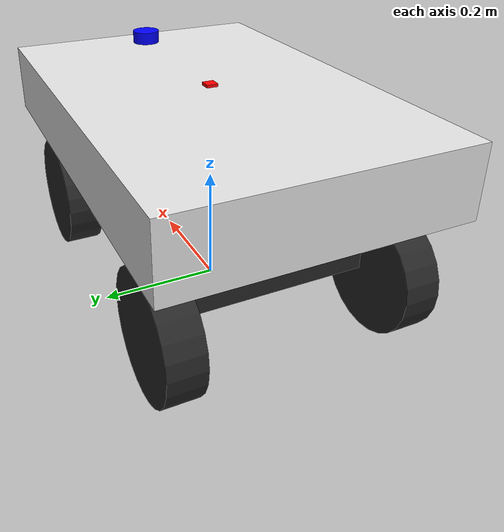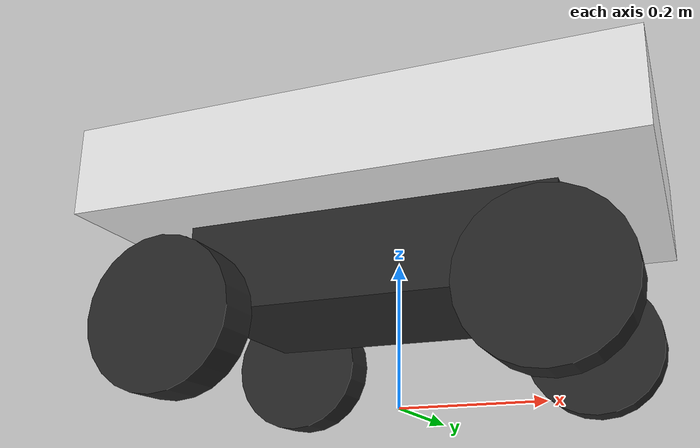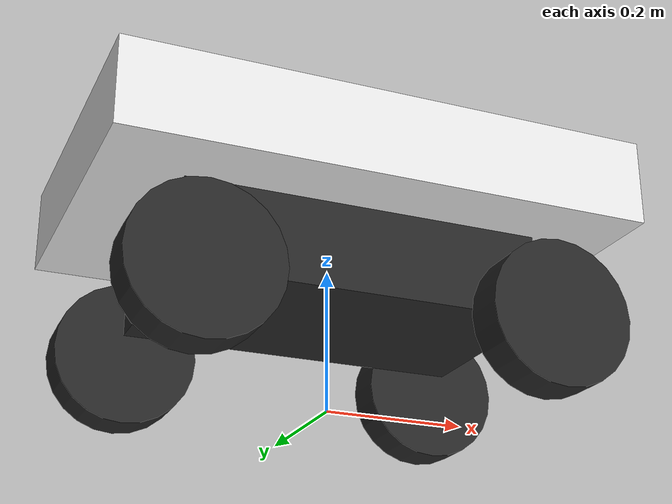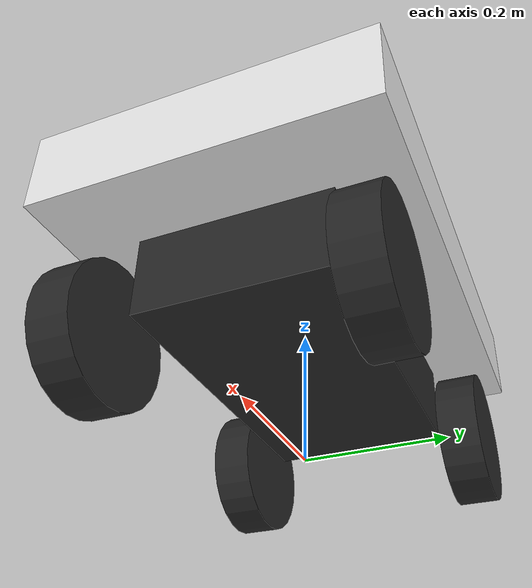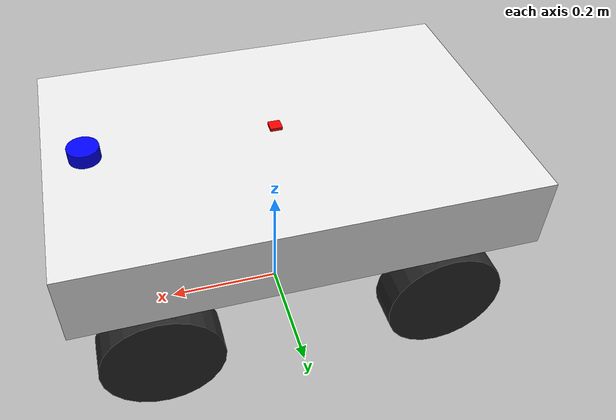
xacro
<?xml version="1.0" ?>
<robot name="four_wheel_independent_drive_and_steering_vehicle" xmlns:xacro="http://www.ros.org/wiki/xacro">

  <material name="black">
    <color rgba="0.15 0.15 0.15 1.0"/>
  </material>
  <material name="white">
    <color rgba="0.9 0.9 0.9 1.0"/>
  </material>
  <material name="red">
    <color rgba="1.0 0.0 0.0 1.0"/>
  </material>
  <material name="blue">
    <color rgba="0.0 0.0 1.0 1.0"/>
  </material>

  <link name="base_footprint"/>

  <link name="base_link"/>
  <joint name="footprint_to_base" type="fixed">
    <origin rpy="0 0 0" xyz="0 0 0"/>
    <parent link="base_footprint"/>
    <child link="base_link"/>
  </joint>

  <link name="body">
    <visual>
      <origin xyz="0 0 0.06" rpy="0 0 0"/>
      <geometry><box size="0.73 0.48 0.12"/></geometry>
      <material name="white"/>
    </visual>
    <visual>
      <origin xyz="0 0 -0.06" rpy="0 0 0"/>
      <geometry><box size="0.50 0.28 0.12"/></geometry>
      <material name="black"/>
    </visual>
    <collision>
      <origin xyz="0 0 0" rpy="0 0 0"/>
      <geometry><box size="0.73 0.28 0.24"/></geometry>
    </collision>
    <inertial>
      <mass value="30.0"/>
      <inertia ixx="0.72" ixy="0" ixz="0" iyy="1.47" iyz="0" izz="1.90"/>
    </inertial>
  </link>

  <joint name="base_joint" type="fixed">
    <origin rpy="0 0 0" xyz="0 0 0.24"/>
    <parent link="base_link"/>
    <child link="body"/>
  </joint>

  <gazebo reference="body">
    <mu1>0.5</mu1>
    <mu2>0.5</mu2>
    <kp>10000000.0</kp>
    <kd>1.0</kd>
    <minDepth>0.001</minDepth>
    <material>Gazebo/White</material>
  </gazebo>

  <link name="laser_link">
    <visual>
      <geometry><cylinder length="0.025" radius="0.025"/></geometry>
      <material name="blue"/>
    </visual>
    <collision>
      <geometry><cylinder length="0.025" radius="0.025"/></geometry>
    </collision>
    <inertial>
      <mass value="0.1"/>
      <inertia ixx="0.0001" ixy="0" ixz="0" iyy="0.0001" iyz="0" izz="0.0001"/>
    </inertial>
  </link>
  <joint name="laser_joint" type="fixed">
    <origin rpy="0 0 0" xyz="0.3 0 0.13"/> <parent link="body"/>
    <child link="laser_link"/>
  </joint>

  <link name="imu_link">
    <visual>
      <geometry><box size="0.02 0.02 0.01"/></geometry>
      <material name="red"/>
    </visual>
    <inertial>
      <mass value="0.01"/>
      <inertia ixx="0.00001" ixy="0" ixz="0" iyy="0.00001" iyz="0" izz="0.00001"/>
    </inertial>
  </link>
  <joint name="imu_joint" type="fixed">
    <origin rpy="0 0 0" xyz="0 0 0.12"/>
    <parent link="body"/>
    <child link="imu_link"/>
  </joint>

  <xacro:macro name="wheel_module" params="prefix x_offset y_offset">

    <link name="${prefix}_wheel_steer">
      <visual>
        <origin rpy="0 0 0" xyz="0 0 -0.05"/>
        <geometry><box size="0.06 0.04 0.10"/></geometry>
        <material name="black"/>
      </visual>
      <inertial>
        <mass value="1.0"/>
        <inertia ixx="0.005" ixy="0" ixz="0" iyy="0.005" iyz="0" izz="0.005"/>
      </inertial>
    </link>
    <joint name="${prefix}_wheel_steer_joint" type="revolute">
      <origin rpy="0 0 0" xyz="${x_offset} ${y_offset} -0.04"/>
      <parent link="body"/>
      <child link="${prefix}_wheel_steer"/>
      <axis xyz="0 0 1"/>
      <limit effort="1000" lower="-3.1416" upper="3.1416" velocity="50"/>
      <dynamics damping="10.0" friction="50.0"/>
    </joint>

    <link name="${prefix}_wheel_rotor">
      <visual>
        <geometry>
          <cylinder length="0.06" radius="0.1015"/>
        </geometry>
        <material name="black"/>
      </visual>
      <collision>
        <geometry>
          <sphere radius="0.1015"/>
        </geometry>
      </collision>
      <inertial>
        <mass value="4.0"/>
        <inertia ixx="0.012" ixy="0" ixz="0" iyy="0.012" iyz="0" izz="0.02"/>
      </inertial>
    </link>

    <joint name="${prefix}_wheel_rotor_joint" type="continuous">
      <origin rpy="-1.570796 0 0" xyz="0 0 -0.0985"/>
      <parent link="${prefix}_wheel_steer"/>
      <child link="${prefix}_wheel_rotor"/>
      <axis xyz="0 0 1"/>
      <limit effort="10000" velocity="23.5"/>
      <dynamics damping="1.0" friction="1.0"/>
    </joint>

    <gazebo reference="${prefix}_wheel_rotor">
      <mu1>0.8</mu1>
      <mu2>0.8</mu2>
      <kp>10000000.0</kp>
      <kd>1.0</kd>
      <minDepth>0.0001</minDepth>
      <material>Gazebo/DarkGrey</material>
    </gazebo>
  </xacro:macro>

  <xacro:wheel_module prefix="front_left" x_offset="0.24" y_offset="0.19" />
  <xacro:wheel_module prefix="front_right" x_offset="0.24" y_offset="-0.19" />
  <xacro:wheel_module prefix="rear_left" x_offset="-0.24" y_offset="0.19" />
  <xacro:wheel_module prefix="rear_right" x_offset="-0.24" y_offset="-0.19" />

  <gazebo reference="laser_link">
    <sensor name="laser" type="ray">
      <pose>0 0 0 0 0 0</pose>
      <visualize>false</visualize>
      <update_rate>10</update_rate>
      <ray>
        <scan>
          <horizontal>
            <samples>800</samples>
            <resolution>1</resolution>
            <min_angle>-3.14159</min_angle>
            <max_angle>3.14159</max_angle>
          </horizontal>
        </scan>
        <range>
          <min>0.05</min>
          <max>30.0</max>
          <resolution>0.01</resolution>
        </range>
      </ray>
      <plugin filename="libgazebo_ros_ray_sensor.so" name="gazebo_ros_lidar_controller">
        <ros>
          <remapping>~/out:=scan</remapping>
        </ros>
        <output_type>sensor_msgs/LaserScan</output_type>
        <frame_name>laser_link</frame_name>
      </plugin>
    </sensor>
  </gazebo>

  <gazebo reference="imu_link">
    <sensor name="imu_sensor" type="imu">
      <always_on>true</always_on>
      <update_rate>100</update_rate>
      <visualize>true</visualize>
      <plugin filename="libgazebo_ros_imu_sensor.so" name="gazebo_ros_imu_controller">
        <ros>
          <remapping>~/out:=imu</remapping>
        </ros>
        <frame_name>imu_link</frame_name>
      </plugin>
    </sensor>
  </gazebo>

  <gazebo>
    <plugin filename="libgazebo_ros_p3d.so" name="ground_truth_odometry">
      <always_on>true</always_on>
      <update_rate>30.0</update_rate>
      <ros>
        <remapping>odom:=/groundtruth_odom</remapping>
      </ros>
      <body_name>base_footprint</body_name>
      <frame_name>odom</frame_name>
      <publish_tf>0</publish_tf>
    </plugin>
  </gazebo>

  <xacro:macro name="control_interface" params="prefix">
    <joint name="${prefix}_wheel_steer_joint">
      <command_interface name="position"/>
      <state_interface name="position"/>
      <state_interface name="velocity"/>
    </joint>
    <joint name="${prefix}_wheel_rotor_joint">
      <command_interface name="velocity"/>
      <state_interface name="position"/>
      <state_interface name="velocity"/>
    </joint>
  </xacro:macro>

  <ros2_control name="GazeboSystem" type="system">
    <hardware>
      <plugin>gazebo_ros2_control/GazeboSystem</plugin>
    </hardware>
    <xacro:control_interface prefix="front_left"/>
    <xacro:control_interface prefix="front_right"/>
    <xacro:control_interface prefix="rear_left"/>
    <xacro:control_interface prefix="rear_right"/>
  </ros2_control>

  <gazebo>
    <plugin filename="libgazebo_ros2_control.so" name="gazebo_ros2_control">
      <robot_param>robot_description</robot_param>
      <robot_param_node>/robot_state_publisher</robot_param_node>
      <parameters>config/fwids_controllers_ros2.yaml</parameters>
    </plugin>
  </gazebo>

</robot>
